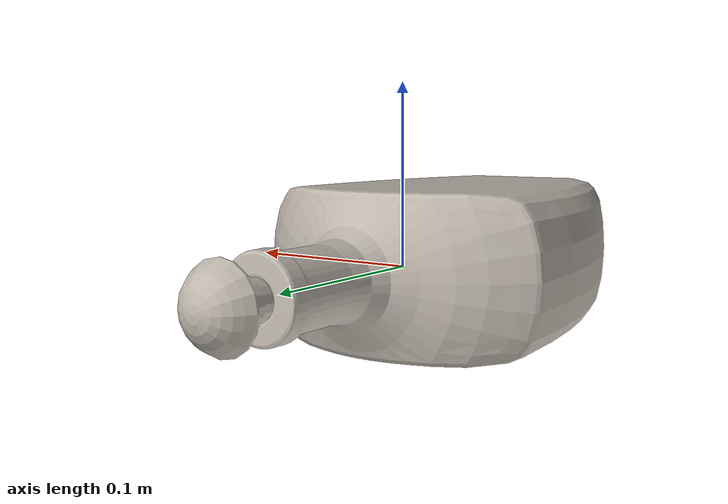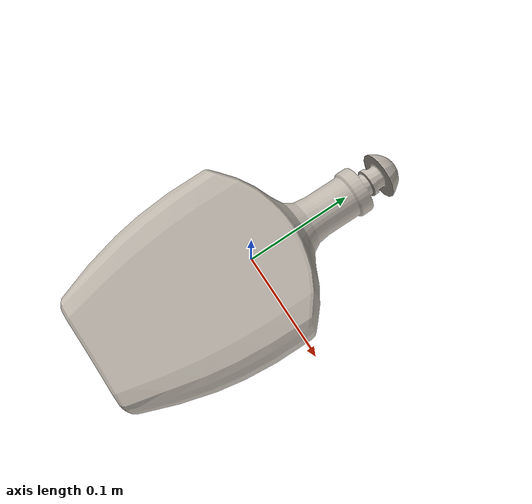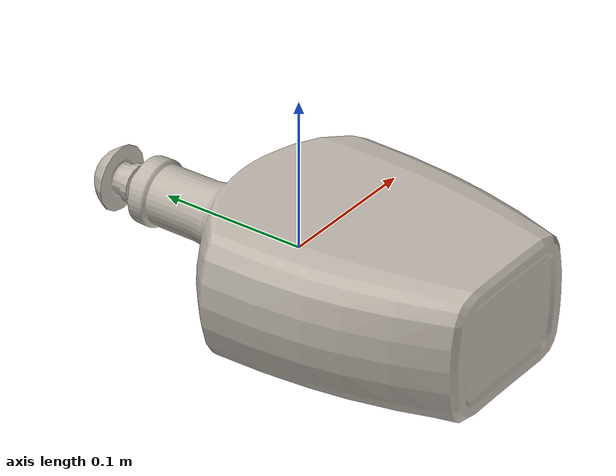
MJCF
<mujoco model="vase_1878341a">
  <compiler angle="radian"/>
  <asset>
    <texture type="2d" name="vase_1878341a_tex" file="vase_1878341a_visual_0.png"/>
    <material name="vase_1878341a_mat" texture="vase_1878341a_tex"/>
    <mesh name="vase_1878341a_visual" content_type="model/obj" file="vase_1878341a_visual.obj" scale="-1 1.01341 1"/>
    <mesh name="vase_1878341a_c0" content_type="model/obj" file="vase_1878341a_c0.obj" scale="-1 1.01341 1"/>
    <mesh name="vase_1878341a_c1" content_type="model/obj" file="vase_1878341a_c1.obj" scale="-1 1.01341 1"/>
  </asset>
  <worldbody>
    <body name="vase_1878341a">
      <freejoint/>
      <geom name="vase_1878341a_visual" type="mesh" mesh="vase_1878341a_visual" mass="1e-8" contype="0" conaffinity="0" group="2" material="vase_1878341a_mat"/>
      <geom name="vase_1878341a_c0" type="mesh" mesh="vase_1878341a_c0" group="3" density="207.44" friction="0.9 0.05 0.005" condim="4" rgba="0.4 0.5 0.9 0.35"/>
      <geom name="vase_1878341a_c1" type="mesh" mesh="vase_1878341a_c1" group="3" density="207.44" friction="0.9 0.05 0.005" condim="4" rgba="0.4 0.5 0.9 0.35"/>
    </body>
  </worldbody>
</mujoco>
